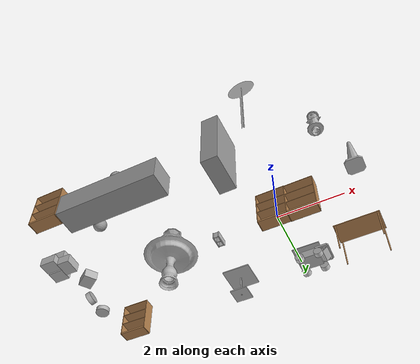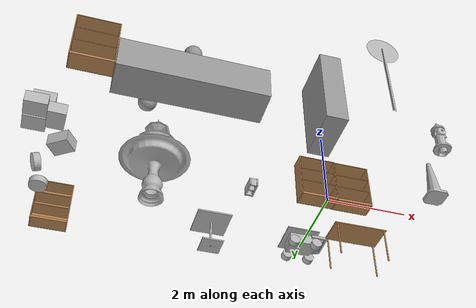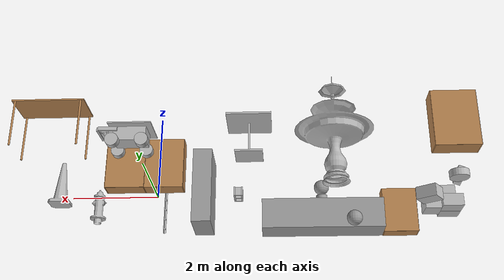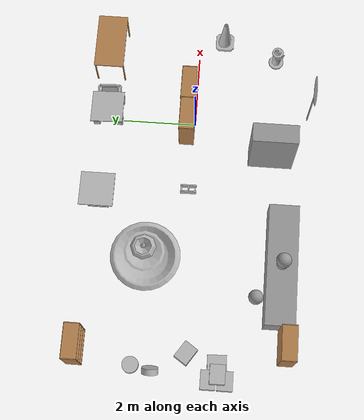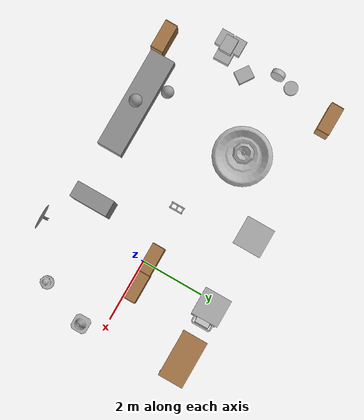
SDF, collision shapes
<?xml version='1.0'?>
<sdf version='1.6'>
  <model name='Furniture'>
    <link name='link_0'>
      <pose frame=''>-3.96381 -2.5225 0.32639 0 -0 0</pose>
      <inertial>
        <mass>1</mass>
        <inertia>
          <ixx>0.166667</ixx>
          <ixy>0</ixy>
          <ixz>0</ixz>
          <iyy>0.166667</iyy>
          <iyz>0</iyz>
          <izz>0.166667</izz>
        </inertia>
        <pose frame=''>0 0 0 0 -0 0</pose>
      </inertial>
      <gravity>1</gravity>
      <self_collide>0</self_collide>
      <kinematic>0</kinematic>
      <visual name='visual'>
        <pose frame=''>0 0 0 0 -0 0</pose>
        <geometry>
          <box>
            <size>3.2 0.8 0.8</size>
          </box>
        </geometry>
        <material>
          <lighting>1</lighting>
          <script>
            <uri>file://media/materials/scripts/gazebo.material</uri>
            <name>Gazebo/Grey</name>
          </script>
          <shader type='pixel'>
            <normal_map>__default__</normal_map>
          </shader>
          <ambient>0.3 0.3 0.3 1</ambient>
          <diffuse>0.7 0.7 0.7 1</diffuse>
          <specular>0.01 0.01 0.01 1</specular>
          <emissive>0 0 0 1</emissive>
        </material>
        <transparency>0</transparency>
        <cast_shadows>1</cast_shadows>
      </visual>
      <collision name='collision'>
        <laser_retro>0</laser_retro>
        <max_contacts>10</max_contacts>
        <pose frame=''>0 0 0 0 -0 0</pose>
        <geometry>
          <box>
            <size>3.2 0.8 0.8</size>
          </box>
        </geometry>
        <surface>
          <friction>
            <ode>
              <mu>1</mu>
              <mu2>1</mu2>
              <fdir1>0 0 0</fdir1>
              <slip1>0</slip1>
              <slip2>0</slip2>
            </ode>
            <torsional>
              <coefficient>1</coefficient>
              <patch_radius>0</patch_radius>
              <surface_radius>0</surface_radius>
              <use_patch_radius>1</use_patch_radius>
              <ode>
                <slip>0</slip>
              </ode>
            </torsional>
          </friction>
          <bounce>
            <restitution_coefficient>0</restitution_coefficient>
            <threshold>1e+06</threshold>
          </bounce>
          <contact>
            <collide_without_contact>0</collide_without_contact>
            <collide_without_contact_bitmask>1</collide_without_contact_bitmask>
            <collide_bitmask>1</collide_bitmask>
            <ode>
              <soft_cfm>0</soft_cfm>
              <soft_erp>0.2</soft_erp>
              <kp>1e+13</kp>
              <kd>1</kd>
              <max_vel>0.01</max_vel>
              <min_depth>0</min_depth>
            </ode>
            <bullet>
              <split_impulse>1</split_impulse>
              <split_impulse_penetration_threshold>-0.01</split_impulse_penetration_threshold>
              <soft_cfm>0</soft_cfm>
              <soft_erp>0.2</soft_erp>
              <kp>1e+13</kp>
              <kd>1</kd>
            </bullet>
          </contact>
        </surface>
      </collision>
    </link>
    <link name='link_1'>
      <pose frame=''>-0.825007 -2.12384 0.92639 0 -0 0</pose>
      <inertial>
        <mass>1</mass>
        <inertia>
          <ixx>0.166667</ixx>
          <ixy>0</ixy>
          <ixz>0</ixz>
          <iyy>0.166667</iyy>
          <iyz>0</iyz>
          <izz>0.166667</izz>
        </inertia>
        <pose frame=''>0 0 0 0 -0 0</pose>
      </inertial>
      <gravity>1</gravity>
      <self_collide>0</self_collide>
      <kinematic>0</kinematic>
      <visual name='visual'>
        <pose frame=''>0 0 0 0 -0 0</pose>
        <geometry>
          <box>
            <size>0.5 1.2 2</size>
          </box>
        </geometry>
        <material>
          <lighting>1</lighting>
          <script>
            <uri>file://media/materials/scripts/gazebo.material</uri>
            <name>Gazebo/Grey</name>
          </script>
          <shader type='pixel'>
            <normal_map>__default__</normal_map>
          </shader>
          <ambient>0.3 0.3 0.3 1</ambient>
          <diffuse>0.7 0.7 0.7 1</diffuse>
          <specular>0.01 0.01 0.01 1</specular>
          <emissive>0 0 0 1</emissive>
        </material>
        <transparency>0</transparency>
        <cast_shadows>1</cast_shadows>
      </visual>
      <collision name='collision'>
        <laser_retro>0</laser_retro>
        <max_contacts>10</max_contacts>
        <pose frame=''>0 0 0 0 -0 0</pose>
        <geometry>
          <box>
            <size>0.5 1.2 2</size>
          </box>
        </geometry>
        <surface>
          <friction>
            <ode>
              <mu>1</mu>
              <mu2>1</mu2>
              <fdir1>0 0 0</fdir1>
              <slip1>0</slip1>
              <slip2>0</slip2>
            </ode>
            <torsional>
              <coefficient>1</coefficient>
              <patch_radius>0</patch_radius>
              <surface_radius>0</surface_radius>
              <use_patch_radius>1</use_patch_radius>
              <ode>
                <slip>0</slip>
              </ode>
            </torsional>
          </friction>
          <bounce>
            <restitution_coefficient>0</restitution_coefficient>
            <threshold>1e+06</threshold>
          </bounce>
          <contact>
            <collide_without_contact>0</collide_without_contact>
            <collide_without_contact_bitmask>1</collide_without_contact_bitmask>
            <collide_bitmask>1</collide_bitmask>
            <ode>
              <soft_cfm>0</soft_cfm>
              <soft_erp>0.2</soft_erp>
              <kp>1e+13</kp>
              <kd>1</kd>
              <max_vel>0.01</max_vel>
              <min_depth>0</min_depth>
            </ode>
            <bullet>
              <split_impulse>1</split_impulse>
              <split_impulse_penetration_threshold>-0.01</split_impulse_penetration_threshold>
              <soft_cfm>0</soft_cfm>
              <soft_erp>0.2</soft_erp>
              <kp>1e+13</kp>
              <kd>1</kd>
            </bullet>
          </contact>
        </surface>
      </collision>
    </link>
    <link name='link_2'>
      <pose frame=''>-4.75501 -1.91521 0.096082 0 -0 0</pose>
      <inertial>
        <mass>1</mass>
        <inertia>
          <ixx>0.1</ixx>
          <ixy>0</ixy>
          <ixz>0</ixz>
          <iyy>0.1</iyy>
          <iyz>0</iyz>
          <izz>0.1</izz>
        </inertia>
        <pose frame=''>0 0 0 0 -0 0</pose>
      </inertial>
      <gravity>1</gravity>
      <self_collide>0</self_collide>
      <kinematic>0</kinematic>
      <visual name='visual'>
        <pose frame=''>0 0 0 0 -0 0</pose>
        <geometry>
          <sphere>
            <radius>0.2</radius>
          </sphere>
        </geometry>
        <material>
          <lighting>1</lighting>
          <script>
            <uri>file://media/materials/scripts/gazebo.material</uri>
            <name>Gazebo/Grey</name>
          </script>
          <shader type='pixel'>
            <normal_map>__default__</normal_map>
          </shader>
          <ambient>0.3 0.3 0.3 1</ambient>
          <diffuse>0.7 0.7 0.7 1</diffuse>
          <specular>0.01 0.01 0.01 1</specular>
          <emissive>0 0 0 1</emissive>
        </material>
        <transparency>0</transparency>
        <cast_shadows>1</cast_shadows>
      </visual>
      <collision name='collision'>
        <laser_retro>0</laser_retro>
        <max_contacts>10</max_contacts>
        <pose frame=''>0 0 0 0 -0 0</pose>
        <geometry>
          <sphere>
            <radius>0.2</radius>
          </sphere>
        </geometry>
        <surface>
          <friction>
            <ode>
              <mu>1</mu>
              <mu2>1</mu2>
              <fdir1>0 0 0</fdir1>
              <slip1>0</slip1>
              <slip2>0</slip2>
            </ode>
            <torsional>
              <coefficient>1</coefficient>
              <patch_radius>0</patch_radius>
              <surface_radius>0</surface_radius>
              <use_patch_radius>1</use_patch_radius>
              <ode>
                <slip>0</slip>
              </ode>
            </torsional>
          </friction>
          <bounce>
            <restitution_coefficient>0</restitution_coefficient>
            <threshold>1e+06</threshold>
          </bounce>
          <contact>
            <collide_without_contact>0</collide_without_contact>
            <collide_without_contact_bitmask>1</collide_without_contact_bitmask>
            <collide_bitmask>1</collide_bitmask>
            <ode>
              <soft_cfm>0</soft_cfm>
              <soft_erp>0.2</soft_erp>
              <kp>1e+13</kp>
              <kd>1</kd>
              <max_vel>0.01</max_vel>
              <min_depth>0</min_depth>
            </ode>
            <bullet>
              <split_impulse>1</split_impulse>
              <split_impulse_penetration_threshold>-0.01</split_impulse_penetration_threshold>
              <soft_cfm>0</soft_cfm>
              <soft_erp>0.2</soft_erp>
              <kp>1e+13</kp>
              <kd>1</kd>
            </bullet>
          </contact>
        </surface>
      </collision>
    </link>
    <link name='link_2_clone'>
      <pose frame=''>-3.96381 -2.5225 1.16639 0 -0 0</pose>
      <inertial>
        <mass>1</mass>
        <inertia>
          <ixx>0.1</ixx>
          <ixy>0</ixy>
          <ixz>0</ixz>
          <iyy>0.1</iyy>
          <iyz>0</iyz>
          <izz>0.1</izz>
        </inertia>
        <pose frame=''>0 0 0 0 -0 0</pose>
      </inertial>
      <self_collide>0</self_collide>
      <kinematic>0</kinematic>
      <gravity>1</gravity>
      <visual name='visual'>
        <pose frame=''>0 0 0 0 -0 0</pose>
        <geometry>
          <sphere>
            <radius>0.2</radius>
          </sphere>
        </geometry>
        <material>
          <lighting>1</lighting>
          <script>
            <uri>file://media/materials/scripts/gazebo.material</uri>
            <name>Gazebo/Grey</name>
          </script>
          <shader type='pixel'>
            <normal_map>__default__</normal_map>
          </shader>
          <ambient>0.3 0.3 0.3 1</ambient>
          <diffuse>0.7 0.7 0.7 1</diffuse>
          <specular>0.01 0.01 0.01 1</specular>
          <emissive>0 0 0 1</emissive>
        </material>
        <transparency>0</transparency>
        <cast_shadows>1</cast_shadows>
      </visual>
      <collision name='collision'>
        <laser_retro>0</laser_retro>
        <max_contacts>10</max_contacts>
        <pose frame=''>0 0 0 0 -0 0</pose>
        <geometry>
          <sphere>
            <radius>0.2</radius>
          </sphere>
        </geometry>
        <surface>
          <friction>
            <ode>
              <mu>1</mu>
              <mu2>1</mu2>
              <fdir1>0 0 0</fdir1>
              <slip1>0</slip1>
              <slip2>0</slip2>
            </ode>
            <torsional>
              <coefficient>1</coefficient>
              <patch_radius>0</patch_radius>
              <surface_radius>0</surface_radius>
              <use_patch_radius>1</use_patch_radius>
              <ode>
                <slip>0</slip>
              </ode>
            </torsional>
          </friction>
          <bounce>
            <restitution_coefficient>0</restitution_coefficient>
            <threshold>1e+06</threshold>
          </bounce>
          <contact>
            <collide_without_contact>0</collide_without_contact>
            <collide_without_contact_bitmask>1</collide_without_contact_bitmask>
            <collide_bitmask>1</collide_bitmask>
            <ode>
              <soft_cfm>0</soft_cfm>
              <soft_erp>0.2</soft_erp>
              <kp>1e+13</kp>
              <kd>1</kd>
              <max_vel>0.01</max_vel>
              <min_depth>0</min_depth>
            </ode>
            <bullet>
              <split_impulse>1</split_impulse>
              <split_impulse_penetration_threshold>-0.01</split_impulse_penetration_threshold>
              <soft_cfm>0</soft_cfm>
              <soft_erp>0.2</soft_erp>
              <kp>1e+13</kp>
              <kd>1</kd>
            </bullet>
          </contact>
        </surface>
      </collision>
    </link>
    <link name='link_3'>
      <pose frame=''>-3.96381 -2.5225 0.82639 0 -0 0</pose>
      <inertial>
        <mass>1</mass>
        <inertia>
          <ixx>0.145833</ixx>
          <ixy>0</ixy>
          <ixz>0</ixz>
          <iyy>0.145833</iyy>
          <iyz>0</iyz>
          <izz>0.125</izz>
        </inertia>
        <pose frame=''>0 0 0 0 -0 0</pose>
      </inertial>
      <gravity>1</gravity>
      <self_collide>0</self_collide>
      <kinematic>0</kinematic>
      <visual name='visual'>
        <pose frame=''>0 0 0 0 -0 0</pose>
        <geometry>
          <cylinder>
            <radius>0.15</radius>
            <length>0.2</length>
          </cylinder>
        </geometry>
        <material>
          <lighting>1</lighting>
          <script>
            <uri>file://media/materials/scripts/gazebo.material</uri>
            <name>Gazebo/Grey</name>
          </script>
          <shader type='pixel'>
            <normal_map>__default__</normal_map>
          </shader>
          <ambient>0.3 0.3 0.3 1</ambient>
          <diffuse>0.7 0.7 0.7 1</diffuse>
          <specular>0.01 0.01 0.01 1</specular>
          <emissive>0 0 0 1</emissive>
        </material>
        <transparency>0</transparency>
        <cast_shadows>1</cast_shadows>
      </visual>
      <collision name='collision'>
        <laser_retro>0</laser_retro>
        <max_contacts>10</max_contacts>
        <pose frame=''>0 0 0 0 -0 0</pose>
        <geometry>
          <cylinder>
            <radius>0.15</radius>
            <length>0.2</length>
          </cylinder>
        </geometry>
        <surface>
          <friction>
            <ode>
              <mu>1</mu>
              <mu2>1</mu2>
              <fdir1>0 0 0</fdir1>
              <slip1>0</slip1>
              <slip2>0</slip2>
            </ode>
            <torsional>
              <coefficient>1</coefficient>
              <patch_radius>0</patch_radius>
              <surface_radius>0</surface_radius>
              <use_patch_radius>1</use_patch_radius>
              <ode>
                <slip>0</slip>
              </ode>
            </torsional>
          </friction>
          <bounce>
            <restitution_coefficient>0</restitution_coefficient>
            <threshold>1e+06</threshold>
          </bounce>
          <contact>
            <collide_without_contact>0</collide_without_contact>
            <collide_without_contact_bitmask>1</collide_without_contact_bitmask>
            <collide_bitmask>1</collide_bitmask>
            <ode>
              <soft_cfm>0</soft_cfm>
              <soft_erp>0.2</soft_erp>
              <kp>1e+13</kp>
              <kd>1</kd>
              <max_vel>0.01</max_vel>
              <min_depth>0</min_depth>
            </ode>
            <bullet>
              <split_impulse>1</split_impulse>
              <split_impulse_penetration_threshold>-0.01</split_impulse_penetration_threshold>
              <soft_cfm>0</soft_cfm>
              <soft_erp>0.2</soft_erp>
              <kp>1e+13</kp>
              <kd>1</kd>
            </bullet>
          </contact>
        </surface>
      </collision>
    </link>
    <model name='Construction Cone'>
      <link name='link'>
        <collision name='collision'>
          <geometry>
            <mesh>
              <scale>10 10 10</scale>
              <uri>model://construction_cone/meshes/construction_cone.dae</uri>
            </mesh>
          </geometry>
        </collision>
        <visual name='visual'>
          <geometry>
            <mesh>
              <scale>10 10 10</scale>
              <uri>model://construction_cone/meshes/construction_cone.dae</uri>
            </mesh>
          </geometry>
        </visual>
      </link>
      <pose frame=''>2.53628 -0.683507 0.107408 0 -0 0</pose>
    </model>
    <model name='Speed limit'>
      <static>1</static>
      <link name='link'>
        <collision name='collision'>
          <geometry>
            <mesh>
              <scale>10 10 10</scale>
              <uri>model://speed_limit_sign/meshes/speed_limit_sign.dae</uri>
            </mesh>
          </geometry>
        </collision>
        <visual name='visual'>
          <geometry>
            <mesh>
              <scale>10 10 10</scale>
              <uri>model://speed_limit_sign/meshes/speed_limit_sign.dae</uri>
            </mesh>
          </geometry>
        </visual>
      </link>
      <pose frame=''>0.337301 -3.06008 0.107408 0 -0 0</pose>
    </model>
    <model name='bookshelf'>
      <static>1</static>
      <link name='link'>
        <inertial>
          <mass>1</mass>
        </inertial>
        <collision name='back'>
          <pose frame=''>0 0.005 0.6 0 -0 0</pose>
          <geometry>
            <box>
              <size>0.9 0.01 1.2</size>
            </box>
          </geometry>
        </collision>
        <visual name='visual1'>
          <pose frame=''>0 0.005 0.6 0 -0 0</pose>
          <geometry>
            <box>
              <size>0.9 0.01 1.2</size>
            </box>
          </geometry>
          <material>
            <script>
              <uri>file://media/materials/scripts/gazebo.material</uri>
              <name>Gazebo/Wood</name>
            </script>
          </material>
        </visual>
        <collision name='left_side'>
          <pose frame=''>0.45 -0.195 0.6 0 -0 0</pose>
          <geometry>
            <box>
              <size>0.02 0.4 1.2</size>
            </box>
          </geometry>
        </collision>
        <visual name='visual2'>
          <pose frame=''>0.45 -0.195 0.6 0 -0 0</pose>
          <geometry>
            <box>
              <size>0.02 0.4 1.2</size>
            </box>
          </geometry>
          <material>
            <script>
              <uri>file://media/materials/scripts/gazebo.material</uri>
              <name>Gazebo/Wood</name>
            </script>
          </material>
        </visual>
        <collision name='right_side'>
          <pose frame=''>-0.45 -0.195 0.6 0 -0 0</pose>
          <geometry>
            <box>
              <size>0.02 0.4 1.2</size>
            </box>
          </geometry>
        </collision>
        <visual name='visual3'>
          <pose frame=''>-0.45 -0.195 0.6 0 -0 0</pose>
          <geometry>
            <box>
              <size>0.02 0.4 1.2</size>
            </box>
          </geometry>
          <material>
            <script>
              <uri>file://media/materials/scripts/gazebo.material</uri>
              <name>Gazebo/Wood</name>
            </script>
          </material>
        </visual>
        <collision name='bottom'>
          <pose frame=''>0 -0.195 0.03 0 -0 0</pose>
          <geometry>
            <box>
              <size>0.88 0.4 0.06</size>
            </box>
          </geometry>
        </collision>
        <visual name='visual4'>
          <pose frame=''>0 -0.195 0.03 0 -0 0</pose>
          <geometry>
            <box>
              <size>0.88 0.4 0.06</size>
            </box>
          </geometry>
          <material>
            <script>
              <uri>file://media/materials/scripts/gazebo.material</uri>
              <name>Gazebo/Wood</name>
            </script>
          </material>
        </visual>
        <collision name='top'>
          <pose frame=''>0 -0.195 1.19 0 -0 0</pose>
          <geometry>
            <box>
              <size>0.88 0.4 0.02</size>
            </box>
          </geometry>
        </collision>
        <visual name='visual5'>
          <pose frame=''>0 -0.195 1.19 0 -0 0</pose>
          <geometry>
            <box>
              <size>0.88 0.4 0.02</size>
            </box>
          </geometry>
          <material>
            <script>
              <uri>file://media/materials/scripts/gazebo.material</uri>
              <name>Gazebo/Wood</name>
            </script>
          </material>
        </visual>
        <collision name='low_shelf'>
          <pose frame=''>0 -0.195 0.43 0 -0 0</pose>
          <geometry>
            <box>
              <size>0.88 0.4 0.02</size>
            </box>
          </geometry>
        </collision>
        <visual name='visual6'>
          <pose frame=''>0 -0.195 0.43 0 -0 0</pose>
          <geometry>
            <box>
              <size>0.88 0.4 0.02</size>
            </box>
          </geometry>
          <material>
            <script>
              <uri>file://media/materials/scripts/gazebo.material</uri>
              <name>Gazebo/Wood</name>
            </script>
          </material>
        </visual>
        <collision name='high_shelf'>
          <pose frame=''>0 -0.195 0.8 0 -0 0</pose>
          <geometry>
            <box>
              <size>0.88 0.4 0.02</size>
            </box>
          </geometry>
        </collision>
        <visual name='visual7'>
          <pose frame=''>0 -0.195 0.8 0 -0 0</pose>
          <geometry>
            <box>
              <size>0.88 0.4 0.02</size>
            </box>
          </geometry>
          <material>
            <script>
              <uri>file://media/materials/scripts/gazebo.material</uri>
              <name>Gazebo/Wood</name>
            </script>
          </material>
        </visual>
      </link>
      <pose frame=''>-6.03121 -2.55626 -0.07361 0 -0 0</pose>
    </model>
    <model name='bookshelf_0'>
      <static>1</static>
      <link name='link'>
        <inertial>
          <mass>1</mass>
        </inertial>
        <collision name='back'>
          <pose frame=''>0 0.005 0.6 0 -0 0</pose>
          <geometry>
            <box>
              <size>0.9 0.01 1.2</size>
            </box>
          </geometry>
        </collision>
        <visual name='visual1'>
          <pose frame=''>0 0.005 0.6 0 -0 0</pose>
          <geometry>
            <box>
              <size>0.9 0.01 1.2</size>
            </box>
          </geometry>
          <material>
            <script>
              <uri>file://media/materials/scripts/gazebo.material</uri>
              <name>Gazebo/Wood</name>
            </script>
          </material>
        </visual>
        <collision name='left_side'>
          <pose frame=''>0.45 -0.195 0.6 0 -0 0</pose>
          <geometry>
            <box>
              <size>0.02 0.4 1.2</size>
            </box>
          </geometry>
        </collision>
        <visual name='visual2'>
          <pose frame=''>0.45 -0.195 0.6 0 -0 0</pose>
          <geometry>
            <box>
              <size>0.02 0.4 1.2</size>
            </box>
          </geometry>
          <material>
            <script>
              <uri>file://media/materials/scripts/gazebo.material</uri>
              <name>Gazebo/Wood</name>
            </script>
          </material>
        </visual>
        <collision name='right_side'>
          <pose frame=''>-0.45 -0.195 0.6 0 -0 0</pose>
          <geometry>
            <box>
              <size>0.02 0.4 1.2</size>
            </box>
          </geometry>
        </collision>
        <visual name='visual3'>
          <pose frame=''>-0.45 -0.195 0.6 0 -0 0</pose>
          <geometry>
            <box>
              <size>0.02 0.4 1.2</size>
            </box>
          </geometry>
          <material>
            <script>
              <uri>file://media/materials/scripts/gazebo.material</uri>
              <name>Gazebo/Wood</name>
            </script>
          </material>
        </visual>
        <collision name='bottom'>
          <pose frame=''>0 -0.195 0.03 0 -0 0</pose>
          <geometry>
            <box>
              <size>0.88 0.4 0.06</size>
            </box>
          </geometry>
        </collision>
        <visual name='visual4'>
          <pose frame=''>0 -0.195 0.03 0 -0 0</pose>
          <geometry>
            <box>
              <size>0.88 0.4 0.06</size>
            </box>
          </geometry>
          <material>
            <script>
              <uri>file://media/materials/scripts/gazebo.material</uri>
              <name>Gazebo/Wood</name>
            </script>
          </material>
        </visual>
        <collision name='top'>
          <pose frame=''>0 -0.195 1.19 0 -0 0</pose>
          <geometry>
            <box>
              <size>0.88 0.4 0.02</size>
            </box>
          </geometry>
        </collision>
        <visual name='visual5'>
          <pose frame=''>0 -0.195 1.19 0 -0 0</pose>
          <geometry>
            <box>
              <size>0.88 0.4 0.02</size>
            </box>
          </geometry>
          <material>
            <script>
              <uri>file://media/materials/scripts/gazebo.material</uri>
              <name>Gazebo/Wood</name>
            </script>
          </material>
        </visual>
        <collision name='low_shelf'>
          <pose frame=''>0 -0.195 0.43 0 -0 0</pose>
          <geometry>
            <box>
              <size>0.88 0.4 0.02</size>
            </box>
          </geometry>
        </collision>
        <visual name='visual6'>
          <pose frame=''>0 -0.195 0.43 0 -0 0</pose>
          <geometry>
            <box>
              <size>0.88 0.4 0.02</size>
            </box>
          </geometry>
          <material>
            <script>
              <uri>file://media/materials/scripts/gazebo.material</uri>
              <name>Gazebo/Wood</name>
            </script>
          </material>
        </visual>
        <collision name='high_shelf'>
          <pose frame=''>0 -0.195 0.8 0 -0 0</pose>
          <geometry>
            <box>
              <size>0.88 0.4 0.02</size>
            </box>
          </geometry>
        </collision>
        <visual name='visual7'>
          <pose frame=''>0 -0.195 0.8 0 -0 0</pose>
          <geometry>
            <box>
              <size>0.88 0.4 0.02</size>
            </box>
          </geometry>
          <material>
            <script>
              <uri>file://media/materials/scripts/gazebo.material</uri>
              <name>Gazebo/Wood</name>
            </script>
          </material>
        </visual>
      </link>
      <pose frame=''>-6.34699 2.89106 -0.07361 0 -0 0</pose>
    </model>
    <model name='bookshelf_1'>
      <static>1</static>
      <link name='link'>
        <inertial>
          <mass>1</mass>
        </inertial>
        <collision name='back'>
          <pose frame=''>0 0.005 0.6 0 -0 0</pose>
          <geometry>
            <box>
              <size>0.9 0.01 1.2</size>
            </box>
          </geometry>
        </collision>
        <visual name='visual1'>
          <pose frame=''>0 0.005 0.6 0 -0 0</pose>
          <geometry>
            <box>
              <size>0.9 0.01 1.2</size>
            </box>
          </geometry>
          <material>
            <script>
              <uri>file://media/materials/scripts/gazebo.material</uri>
              <name>Gazebo/Wood</name>
            </script>
          </material>
        </visual>
        <collision name='left_side'>
          <pose frame=''>0.45 -0.195 0.6 0 -0 0</pose>
          <geometry>
            <box>
              <size>0.02 0.4 1.2</size>
            </box>
          </geometry>
        </collision>
        <visual name='visual2'>
          <pose frame=''>0.45 -0.195 0.6 0 -0 0</pose>
          <geometry>
            <box>
              <size>0.02 0.4 1.2</size>
            </box>
          </geometry>
          <material>
            <script>
              <uri>file://media/materials/scripts/gazebo.material</uri>
              <name>Gazebo/Wood</name>
            </script>
          </material>
        </visual>
        <collision name='right_side'>
          <pose frame=''>-0.45 -0.195 0.6 0 -0 0</pose>
          <geometry>
            <box>
              <size>0.02 0.4 1.2</size>
            </box>
          </geometry>
        </collision>
        <visual name='visual3'>
          <pose frame=''>-0.45 -0.195 0.6 0 -0 0</pose>
          <geometry>
            <box>
              <size>0.02 0.4 1.2</size>
            </box>
          </geometry>
          <material>
            <script>
              <uri>file://media/materials/scripts/gazebo.material</uri>
              <name>Gazebo/Wood</name>
            </script>
          </material>
        </visual>
        <collision name='bottom'>
          <pose frame=''>0 -0.195 0.03 0 -0 0</pose>
          <geometry>
            <box>
              <size>0.88 0.4 0.06</size>
            </box>
          </geometry>
        </collision>
        <visual name='visual4'>
          <pose frame=''>0 -0.195 0.03 0 -0 0</pose>
          <geometry>
            <box>
              <size>0.88 0.4 0.06</size>
            </box>
          </geometry>
          <material>
            <script>
              <uri>file://media/materials/scripts/gazebo.material</uri>
              <name>Gazebo/Wood</name>
            </script>
          </material>
        </visual>
        <collision name='top'>
          <pose frame=''>0 -0.195 1.19 0 -0 0</pose>
          <geometry>
            <box>
              <size>0.88 0.4 0.02</size>
            </box>
          </geometry>
        </collision>
        <visual name='visual5'>
          <pose frame=''>0 -0.195 1.19 0 -0 0</pose>
          <geometry>
            <box>
              <size>0.88 0.4 0.02</size>
            </box>
          </geometry>
          <material>
            <script>
              <uri>file://media/materials/scripts/gazebo.material</uri>
              <name>Gazebo/Wood</name>
            </script>
          </material>
        </visual>
        <collision name='low_shelf'>
          <pose frame=''>0 -0.195 0.43 0 -0 0</pose>
          <geometry>
            <box>
              <size>0.88 0.4 0.02</size>
            </box>
          </geometry>
        </collision>
        <visual name='visual6'>
          <pose frame=''>0 -0.195 0.43 0 -0 0</pose>
          <geometry>
            <box>
              <size>0.88 0.4 0.02</size>
            </box>
          </geometry>
          <material>
            <script>
              <uri>file://media/materials/scripts/gazebo.material</uri>
              <name>Gazebo/Wood</name>
            </script>
          </material>
        </visual>
        <collision name='high_shelf'>
          <pose frame=''>0 -0.195 0.8 0 -0 0</pose>
          <geometry>
            <box>
              <size>0.88 0.4 0.02</size>
            </box>
          </geometry>
        </collision>
        <visual name='visual7'>
          <pose frame=''>0 -0.195 0.8 0 -0 0</pose>
          <geometry>
            <box>
              <size>0.88 0.4 0.02</size>
            </box>
          </geometry>
          <material>
            <script>
              <uri>file://media/materials/scripts/gazebo.material</uri>
              <name>Gazebo/Wood</name>
            </script>
          </material>
        </visual>
      </link>
      <pose frame=''>-0.162446 0.403445 0.107408 0 -0 0</pose>
    </model>
    <model name='bookshelf_2'>
      <static>1</static>
      <link name='link'>
        <inertial>
          <mass>1</mass>
        </inertial>
        <collision name='back'>
          <pose frame=''>0 0.005 0.6 0 -0 0</pose>
          <geometry>
            <box>
              <size>0.9 0.01 1.2</size>
            </box>
          </geometry>
        </collision>
        <visual name='visual1'>
          <pose frame=''>0 0.005 0.6 0 -0 0</pose>
          <geometry>
            <box>
              <size>0.9 0.01 1.2</size>
            </box>
          </geometry>
          <material>
            <script>
              <uri>file://media/materials/scripts/gazebo.material</uri>
              <name>Gazebo/Wood</name>
            </script>
          </material>
        </visual>
        <collision name='left_side'>
          <pose frame=''>0.45 -0.195 0.6 0 -0 0</pose>
          <geometry>
            <box>
              <size>0.02 0.4 1.2</size>
            </box>
          </geometry>
        </collision>
        <visual name='visual2'>
          <pose frame=''>0.45 -0.195 0.6 0 -0 0</pose>
          <geometry>
            <box>
              <size>0.02 0.4 1.2</size>
            </box>
          </geometry>
          <material>
            <script>
              <uri>file://media/materials/scripts/gazebo.material</uri>
              <name>Gazebo/Wood</name>
            </script>
          </material>
        </visual>
        <collision name='right_side'>
          <pose frame=''>-0.45 -0.195 0.6 0 -0 0</pose>
          <geometry>
            <box>
              <size>0.02 0.4 1.2</size>
            </box>
          </geometry>
        </collision>
        <visual name='visual3'>
          <pose frame=''>-0.45 -0.195 0.6 0 -0 0</pose>
          <geometry>
            <box>
              <size>0.02 0.4 1.2</size>
            </box>
          </geometry>
          <material>
            <script>
              <uri>file://media/materials/scripts/gazebo.material</uri>
              <name>Gazebo/Wood</name>
            </script>
          </material>
        </visual>
        <collision name='bottom'>
          <pose frame=''>0 -0.195 0.03 0 -0 0</pose>
          <geometry>
            <box>
              <size>0.88 0.4 0.06</size>
            </box>
          </geometry>
        </collision>
        <visual name='visual4'>
          <pose frame=''>0 -0.195 0.03 0 -0 0</pose>
          <geometry>
            <box>
              <size>0.88 0.4 0.06</size>
            </box>
          </geometry>
          <material>
            <script>
              <uri>file://media/materials/scripts/gazebo.material</uri>
              <name>Gazebo/Wood</name>
            </script>
          </material>
        </visual>
        <collision name='top'>
          <pose frame=''>0 -0.195 1.19 0 -0 0</pose>
          <geometry>
            <box>
              <size>0.88 0.4 0.02</size>
            </box>
          </geometry>
        </collision>
        <visual name='visual5'>
          <pose frame=''>0 -0.195 1.19 0 -0 0</pose>
          <geometry>
            <box>
              <size>0.88 0.4 0.02</size>
            </box>
          </geometry>
          <material>
            <script>
              <uri>file://media/materials/scripts/gazebo.material</uri>
              <name>Gazebo/Wood</name>
            </script>
          </material>
        </visual>
        <collision name='low_shelf'>
          <pose frame=''>0 -0.195 0.43 0 -0 0</pose>
          <geometry>
            <box>
              <size>0.88 0.4 0.02</size>
            </box>
          </geometry>
        </collision>
        <visual name='visual6'>
          <pose frame=''>0 -0.195 0.43 0 -0 0</pose>
          <geometry>
            <box>
              <size>0.88 0.4 0.02</size>
            </box>
          </geometry>
          <material>
            <script>
              <uri>file://media/materials/scripts/gazebo.material</uri>
              <name>Gazebo/Wood</name>
            </script>
          </material>
        </visual>
        <collision name='high_shelf'>
          <pose frame=''>0 -0.195 0.8 0 -0 0</pose>
          <geometry>
            <box>
              <size>0.88 0.4 0.02</size>
            </box>
          </geometry>
        </collision>
        <visual name='visual7'>
          <pose frame=''>0 -0.195 0.8 0 -0 0</pose>
          <geometry>
            <box>
              <size>0.88 0.4 0.02</size>
            </box>
          </geometry>
          <material>
            <script>
              <uri>file://media/materials/scripts/gazebo.material</uri>
              <name>Gazebo/Wood</name>
            </script>
          </material>
        </visual>
      </link>
      <pose frame=''>0.736986 0.415849 0.107408 0 -0 0</pose>
    </model>
    <model name='cafe_table'>
      <static>1</static>
      <link name='link'>
        <collision name='surface'>
          <pose frame=''>0 0 0.755 0 -0 0</pose>
          <geometry>
            <box>
              <size>0.913 0.913 0.04</size>
            </box>
          </geometry>
        </collision>
        <collision name='column'>
          <pose frame=''>0 0 0.37 0 -0 0</pose>
          <geometry>
            <box>
              <size>0.042 0.042 0.74</size>
            </box>
          </geometry>
        </collision>
        <collision name='base'>
          <pose frame=''>0 0 0.02 0 -0 0</pose>
          <geometry>
            <box>
              <size>0.56 0.56 0.04</size>
            </box>
          </geometry>
        </collision>
        <visual name='visual'>
          <geometry>
            <mesh>
              <uri>model://cafe_table/meshes/cafe_table.dae</uri>
            </mesh>
          </geometry>
        </visual>
      </link>
      <pose frame=''>-2.24496 2.47868 -0.07361 0 -0 0</pose>
    </model>
    <model name='car_wheel'>
      <link name='link'>
        <pose frame=''>0 0 0.21682 0 1.5707 0</pose>
        <inertial>
          <mass>12</mass>
          <inertia>
            <ixx>0.167005</ixx>
            <ixy>0</ixy>
            <ixz>0</ixz>
            <iyy>0.167005</iyy>
            <iyz>0</iyz>
            <izz>0.282065</izz>
          </inertia>
        </inertial>
        <collision name='collision'>
          <geometry>
            <cylinder>
              <radius>0.21682</radius>
              <length>0.16116</length>
            </cylinder>
          </geometry>
          <surface>
            <friction>
              <ode>
                <mu>1</mu>
                <mu2>1</mu2>
                <fdir1>0 0 1</fdir1>
                <slip1>0</slip1>
                <slip2>0</slip2>
              </ode>
            </friction>
            <contact>
              <ode>
                <min_depth>0.005</min_depth>
                <kp>1e+08</kp>
              </ode>
            </contact>
          </surface>
        </collision>
        <visual name='visual'>
          <pose frame=''>0 0 -0.08058 0 -0 0</pose>
          <geometry>
            <mesh>
              <uri>model://car_wheel/meshes/car_wheel.dae</uri>
            </mesh>
          </geometry>
        </visual>
      </link>
      <pose frame=''>-6.76975 0.710045 -0.038601 0 -0.37036 0</pose>
    </model>
    <model name='car_wheel_0'>
      <link name='link'>
        <pose frame=''>0 0 0.21682 0 1.5707 0</pose>
        <inertial>
          <mass>12</mass>
          <inertia>
            <ixx>0.167005</ixx>
            <ixy>0</ixy>
            <ixz>0</ixz>
            <iyy>0.167005</iyy>
            <iyz>0</iyz>
            <izz>0.282065</izz>
          </inertia>
        </inertial>
        <collision name='collision'>
          <geometry>
            <cylinder>
              <radius>0.21682</radius>
              <length>0.16116</length>
            </cylinder>
          </geometry>
          <surface>
            <friction>
              <ode>
                <mu>1</mu>
                <mu2>1</mu2>
                <fdir1>0 0 1</fdir1>
                <slip1>0</slip1>
                <slip2>0</slip2>
              </ode>
            </friction>
            <contact>
              <ode>
                <min_depth>0.005</min_depth>
                <kp>1e+08</kp>
              </ode>
            </contact>
          </surface>
        </collision>
        <visual name='visual'>
          <pose frame=''>0 0 -0.08058 0 -0 0</pose>
          <geometry>
            <mesh>
              <uri>model://car_wheel/meshes/car_wheel.dae</uri>
            </mesh>
          </geometry>
        </visual>
      </link>
      <pose frame=''>-6.49998 1.24 -0.028648 0 -1.56661 0</pose>
    </model>
    <model name='cardboard_box'>
      <pose frame=''>-6.98726 -1.22776 0.07639 0 -0 0</pose>
      <link name='link'>
        <inertial>
          <mass>2</mass>
          <inertia>
            <ixx>0.0416667</ixx>
            <ixy>0</ixy>
            <ixz>0</ixz>
            <iyy>0.0566667</iyy>
            <iyz>0</iyz>
            <izz>0.0683333</izz>
          </inertia>
        </inertial>
        <collision name='collision'>
          <geometry>
            <box>
              <size>0.5 0.4 0.3</size>
            </box>
          </geometry>
          <surface>
            <friction>
              <ode>
                <mu>1</mu>
                <mu2>1</mu2>
              </ode>
            </friction>
            <contact>
              <ode>
                <kp>1e+07</kp>
                <kd>1</kd>
                <min_depth>0.001</min_depth>
                <max_vel>0.1</max_vel>
              </ode>
            </contact>
          </surface>
        </collision>
        <visual name='visual'>
          <pose frame=''>0 0 -0.15 0 -0 0</pose>
          <geometry>
            <mesh>
              <uri>model://cardboard_box/meshes/cardboard_box.dae</uri>
              <scale>1.25932 1.00745 0.755591</scale>
            </mesh>
          </geometry>
        </visual>
      </link>
    </model>
    <model name='cardboard_box_0'>
      <pose frame=''>-6.98405 -0.786589 0.07639 0 -0 0</pose>
      <link name='link'>
        <inertial>
          <mass>2</mass>
          <inertia>
            <ixx>0.0416667</ixx>
            <ixy>0</ixy>
            <ixz>0</ixz>
            <iyy>0.0566667</iyy>
            <iyz>0</iyz>
            <izz>0.0683333</izz>
          </inertia>
        </inertial>
        <collision name='collision'>
          <geometry>
            <box>
              <size>0.5 0.4 0.3</size>
            </box>
          </geometry>
          <surface>
            <friction>
              <ode>
                <mu>1</mu>
                <mu2>1</mu2>
              </ode>
            </friction>
            <contact>
              <ode>
                <kp>1e+07</kp>
                <kd>1</kd>
                <min_depth>0.001</min_depth>
                <max_vel>0.1</max_vel>
              </ode>
            </contact>
          </surface>
        </collision>
        <visual name='visual'>
          <pose frame=''>0 0 -0.15 0 -0 0</pose>
          <geometry>
            <mesh>
              <uri>model://cardboard_box/meshes/cardboard_box.dae</uri>
              <scale>1.25932 1.00745 0.755591</scale>
            </mesh>
          </geometry>
        </visual>
      </link>
    </model>
    <model name='cardboard_box_1'>
      <pose frame=''>-6.54078 -0.992432 0.07639 0 0 -1.54602</pose>
      <link name='link'>
        <inertial>
          <mass>2</mass>
          <inertia>
            <ixx>0.0416667</ixx>
            <ixy>0</ixy>
            <ixz>0</ixz>
            <iyy>0.0566667</iyy>
            <iyz>0</iyz>
            <izz>0.0683333</izz>
          </inertia>
        </inertial>
        <collision name='collision'>
          <geometry>
            <box>
              <size>0.5 0.4 0.3</size>
            </box>
          </geometry>
          <surface>
            <friction>
              <ode>
                <mu>1</mu>
                <mu2>1</mu2>
              </ode>
            </friction>
            <contact>
              <ode>
                <kp>1e+07</kp>
                <kd>1</kd>
                <min_depth>0.001</min_depth>
                <max_vel>0.1</max_vel>
              </ode>
            </contact>
          </surface>
        </collision>
        <visual name='visual'>
          <pose frame=''>0 0 -0.15 0 -0 0</pose>
          <geometry>
            <mesh>
              <uri>model://cardboard_box/meshes/cardboard_box.dae</uri>
              <scale>1.25932 1.00745 0.755591</scale>
            </mesh>
          </geometry>
        </visual>
      </link>
    </model>
    <model name='cardboard_box_2'>
      <pose frame=''>-6.85799 -1.01639 0.380677 0 -0 0</pose>
      <link name='link'>
        <inertial>
          <mass>2</mass>
          <inertia>
            <ixx>0.0416667</ixx>
            <ixy>0</ixy>
            <ixz>0</ixz>
            <iyy>0.0566667</iyy>
            <iyz>0</iyz>
            <izz>0.0683333</izz>
          </inertia>
        </inertial>
        <collision name='collision'>
          <geometry>
            <box>
              <size>0.5 0.4 0.3</size>
            </box>
          </geometry>
          <surface>
            <friction>
              <ode>
                <mu>1</mu>
                <mu2>1</mu2>
              </ode>
            </friction>
            <contact>
              <ode>
                <kp>1e+07</kp>
                <kd>1</kd>
                <min_depth>0.001</min_depth>
                <max_vel>0.1</max_vel>
              </ode>
            </contact>
          </surface>
        </collision>
        <visual name='visual'>
          <pose frame=''>0 0 -0.15 0 -0 0</pose>
          <geometry>
            <mesh>
              <uri>model://cardboard_box/meshes/cardboard_box.dae</uri>
              <scale>1.25932 1.00745 0.755591</scale>
            </mesh>
          </geometry>
        </visual>
      </link>
    </model>
    <model name='cardboard_box_3'>
      <pose frame=''>-6.34171 -0.18029 0.07639 0 0 -0.595637</pose>
      <link name='link'>
        <inertial>
          <mass>2</mass>
          <inertia>
            <ixx>0.0416667</ixx>
            <ixy>0</ixy>
            <ixz>0</ixz>
            <iyy>0.0566667</iyy>
            <iyz>0</iyz>
            <izz>0.0683333</izz>
          </inertia>
        </inertial>
        <collision name='collision'>
          <geometry>
            <box>
              <size>0.5 0.4 0.3</size>
            </box>
          </geometry>
          <surface>
            <friction>
              <ode>
                <mu>1</mu>
                <mu2>1</mu2>
              </ode>
            </friction>
            <contact>
              <ode>
                <kp>1e+07</kp>
                <kd>1</kd>
                <min_depth>0.001</min_depth>
                <max_vel>0.1</max_vel>
              </ode>
            </contact>
          </surface>
        </collision>
        <visual name='visual'>
          <pose frame=''>0 0 -0.15 0 -0 0</pose>
          <geometry>
            <mesh>
              <uri>model://cardboard_box/meshes/cardboard_box.dae</uri>
              <scale>1.25932 1.00745 0.755591</scale>
            </mesh>
          </geometry>
        </visual>
      </link>
    </model>
    <model name='cinder_block'>
      <link name='link'>
        <inertial>
          <pose frame=''>0 0 0.1016 0 -0 0</pose>
          <mass>5</mass>
          <inertia>
            <ixx>0.028705</ixx>
            <ixy>0</ixy>
            <iyy>0.073708</iyy>
            <ixz>0</ixz>
            <iyz>0</iyz>
            <izz>0.06908</izz>
          </inertia>
        </inertial>
        <visual name='visual'>
          <geometry>
            <mesh>
              <uri>model://cinder_block/meshes/cinder_block.dae</uri>
            </mesh>
          </geometry>
        </visual>
        <collision name='left'>
          <pose frame=''>0 -0.08465 0.1016 0 -0 0</pose>
          <geometry>
            <box>
              <size>0.43495 0.0339 0.2032</size>
            </box>
          </geometry>
          <surface>
            <contact>
              <ode>
                <max_vel>0.1</max_vel>
                <min_depth>0.001</min_depth>
              </ode>
            </contact>
            <friction>
              <ode>
                <mu>1</mu>
                <mu2>1</mu2>
              </ode>
            </friction>
          </surface>
        </collision>
        <collision name='right'>
          <pose frame=''>0 0.08465 0.1016 0 -0 0</pose>
          <geometry>
            <box>
              <size>0.43495 0.0339 0.2032</size>
            </box>
          </geometry>
          <surface>
            <contact>
              <ode>
                <max_vel>0.1</max_vel>
                <min_depth>0.001</min_depth>
              </ode>
            </contact>
            <friction>
              <ode>
                <mu>1</mu>
                <mu2>1</mu2>
              </ode>
            </friction>
          </surface>
        </collision>
        <collision name='front'>
          <pose frame=''>0.18625 0 0.1016 0 -0 0</pose>
          <geometry>
            <box>
              <size>0.0339 0.1354 0.203</size>
            </box>
          </geometry>
          <surface>
            <contact>
              <ode>
                <max_vel>0.1</max_vel>
                <min_depth>0.001</min_depth>
              </ode>
            </contact>
            <friction>
              <ode>
                <mu>1</mu>
                <mu2>1</mu2>
              </ode>
            </friction>
          </surface>
        </collision>
        <collision name='middle'>
          <pose frame=''>0 0 0.1016 0 -0 0</pose>
          <geometry>
            <box>
              <size>0.0339 0.1354 0.203</size>
            </box>
          </geometry>
          <surface>
            <contact>
              <ode>
                <max_vel>0.1</max_vel>
                <min_depth>0.001</min_depth>
              </ode>
            </contact>
            <friction>
              <ode>
                <mu>1</mu>
                <mu2>1</mu2>
              </ode>
            </friction>
          </surface>
        </collision>
        <collision name='back'>
          <pose frame=''>-0.18625 0 0.1016 0 -0 0</pose>
          <geometry>
            <box>
              <size>0.0339 0.1354 0.203</size>
            </box>
          </geometry>
          <surface>
            <contact>
              <ode>
                <max_vel>0.1</max_vel>
                <min_depth>0.001</min_depth>
              </ode>
            </contact>
            <friction>
              <ode>
                <mu>1</mu>
                <mu2>1</mu2>
              </ode>
            </friction>
          </surface>
        </collision>
      </link>
      <pose frame=''>-1.88497 0.065462 -0.07361 0 0 -1.5592</pose>
    </model>
    <model name='fire_hydrant'>
      <static>1</static>
      <link name='link'>
        <collision name='collision'>
          <geometry>
            <mesh>
              <uri>model://fire_hydrant/meshes/fire_hydrant.dae</uri>
            </mesh>
          </geometry>
        </collision>
        <visual name='visual'>
          <geometry>
            <mesh>
              <uri>model://fire_hydrant/meshes/fire_hydrant.dae</uri>
            </mesh>
          </geometry>
        </visual>
      </link>
      <pose frame=''>1.96512 -2.15946 0.107408 0 -0 0</pose>
    </model>
    <model name='fountain'>
      <static>1</static>
      <link name='link'>
        <collision name='collision'>
          <geometry>
            <mesh>
              <uri>model://fountain/meshes/fountain.dae</uri>
            </mesh>
          </geometry>
        </collision>
        <visual name='visual'>
          <geometry>
            <mesh>
              <uri>model://fountain/meshes/fountain.dae</uri>
            </mesh>
          </geometry>
        </visual>
      </link>
      <pose frame=''>-4.09392 1.00318 -0.07361 0 -0 0</pose>
    </model>
    <model name='mars_rover'>
      <static>1</static>
      <link name='link'>
        <collision name='solar_panel_collision'>
          <pose frame=''>0 -0.06945 0.47293 0 -0 0</pose>
          <geometry>
            <box>
              <size>0.87974 0.8821 0.02602</size>
            </box>
          </geometry>
        </collision>
        <collision name='chassis_collision'>
          <pose frame=''>0 -0.05 0.31475 0 -0 0</pose>
          <geometry>
            <box>
              <size>0.49522 0.67401 0.28915</size>
            </box>
          </geometry>
        </collision>
        <collision name='rear_left_bumper_collision'>
          <pose frame=''>0.30107 0.3835 0.38976 0 -0 0</pose>
          <geometry>
            <box>
              <size>0.04442 0.38897 0.07918</size>
            </box>
          </geometry>
        </collision>
        <collision name='rear_right_bumper_collision'>
          <pose frame=''>-0.30107 0.3835 0.38976 0 -0 0</pose>
          <geometry>
            <box>
              <size>0.04442 0.38897 0.07918</size>
            </box>
          </geometry>
        </collision>
        <collision name='rear_bumper_collision'>
          <pose frame=''>0 0.59414 0.38976 0 -0 0</pose>
          <geometry>
            <box>
              <size>0.56656 0.04442 0.07918</size>
            </box>
          </geometry>
        </collision>
        <collision name='bin_back_panel_collision'>
          <pose frame=''>0 0.47 0.32114 0.69137 -0 0</pose>
          <geometry>
            <box>
              <size>0.43774 0.212366 0.05173</size>
            </box>
          </geometry>
        </collision>
        <collision name='bin_left_panel_collision1'>
          <pose frame=''>0.22615 0.32897 0.33193 0 -0 0</pose>
          <geometry>
            <box>
              <size>0.01116 0.19338 0.16304</size>
            </box>
          </geometry>
        </collision>
        <collision name='bin_left_panel_collision2'>
          <pose frame=''>0.22615 0.471 0.39308 0 -0 0</pose>
          <geometry>
            <box>
              <size>0.01116 0.15 0.04</size>
            </box>
          </geometry>
        </collision>
        <collision name='bin_left_panel_collision3'>
          <pose frame=''>0.22615 0.45 0.35308 0 -0 0</pose>
          <geometry>
            <box>
              <size>0.01116 0.15 0.04</size>
            </box>
          </geometry>
        </collision>
        <collision name='bin_left_panel_collision4'>
          <pose frame=''>0.22615 0.39308 0.31308 0 -0 0</pose>
          <geometry>
            <box>
              <size>0.01116 0.15 0.04</size>
            </box>
          </geometry>
        </collision>
        <collision name='bin_right_panel_collision1'>
          <pose frame=''>-0.22615 0.32897 0.33193 0 -0 0</pose>
          <geometry>
            <box>
              <size>0.01116 0.19338 0.16304</size>
            </box>
          </geometry>
        </collision>
        <collision name='bin_right_panel_collision2'>
          <pose frame=''>-0.22615 0.471 0.39308 0 -0 0</pose>
          <geometry>
            <box>
              <size>0.01116 0.15 0.04</size>
            </box>
          </geometry>
        </collision>
        <collision name='bin_right_panel_collision3'>
          <pose frame=''>-0.22615 0.45 0.35308 0 -0 0</pose>
          <geometry>
            <box>
              <size>0.01116 0.15 0.04</size>
            </box>
          </geometry>
        </collision>
        <collision name='bin_right_panel_collision4'>
          <pose frame=''>-0.22615 0.39308 0.31308 0 -0 0</pose>
          <geometry>
            <box>
              <size>0.01116 0.15 0.04</size>
            </box>
          </geometry>
        </collision>
        <collision name='bin_front_panel_collision'>
          <pose frame=''>0 0.30047 0.32114 2.26207 -0 0</pose>
          <geometry>
            <box>
              <size>0.43774 0.212366 0.05173</size>
            </box>
          </geometry>
        </collision>
        <collision name='front_left_wheel_collision'>
          <pose frame=''>0.31103 -0.32115 0.1358 1.5707 0 1.5707</pose>
          <geometry>
            <cylinder>
              <radius>0.1358</radius>
              <length>0.1641</length>
            </cylinder>
          </geometry>
        </collision>
        <collision name='front_right_wheel_collision'>
          <pose frame=''>-0.31103 -0.32115 0.1358 1.5707 0 1.5707</pose>
          <geometry>
            <cylinder>
              <radius>0.1358</radius>
              <length>0.1641</length>
            </cylinder>
          </geometry>
        </collision>
        <collision name='rear_left_wheel_collision'>
          <pose frame=''>0.31103 0.28049 0.1358 1.5707 0 1.5707</pose>
          <geometry>
            <cylinder>
              <radius>0.1358</radius>
              <length>0.1641</length>
            </cylinder>
          </geometry>
        </collision>
        <collision name='rear_right_wheel_collision'>
          <pose frame=''>-0.31103 0.28049 0.1358 1.5707 0 1.5707</pose>
          <geometry>
            <cylinder>
              <radius>0.1358</radius>
              <length>0.1641</length>
            </cylinder>
          </geometry>
        </collision>
        <visual name='visual'>
          <geometry>
            <mesh>
              <uri>model://mars_rover/meshes/rover.dae</uri>
            </mesh>
          </geometry>
        </visual>
      </link>
      <pose frame=''>0.238262 2.40099 0.107408 -0.000309 -0.059509 -1.5656</pose>
    </model>
    <model name='table'>
      <static>1</static>
      <link name='link'>
        <collision name='surface'>
          <pose frame=''>0 0 1 0 -0 0</pose>
          <geometry>
            <box>
              <size>1.5 0.8 0.03</size>
            </box>
          </geometry>
          <surface>
            <friction>
              <ode>
                <mu>0.6</mu>
                <mu2>0.6</mu2>
              </ode>
            </friction>
          </surface>
        </collision>
        <visual name='visual1'>
          <pose frame=''>0 0 1 0 -0 0</pose>
          <geometry>
            <box>
              <size>1.5 0.8 0.03</size>
            </box>
          </geometry>
          <material>
            <script>
              <uri>file://media/materials/scripts/gazebo.material</uri>
              <name>Gazebo/Wood</name>
            </script>
          </material>
        </visual>
        <collision name='front_left_leg'>
          <pose frame=''>0.68 0.38 0.5 0 -0 0</pose>
          <geometry>
            <cylinder>
              <radius>0.02</radius>
              <length>1</length>
            </cylinder>
          </geometry>
        </collision>
        <visual name='front_left_leg'>
          <pose frame=''>0.68 0.38 0.5 0 -0 0</pose>
          <geometry>
            <cylinder>
              <radius>0.02</radius>
              <length>1</length>
            </cylinder>
          </geometry>
          <material>
            <script>
              <uri>file://media/materials/scripts/gazebo.material</uri>
              <name>Gazebo/Grey</name>
            </script>
          </material>
        </visual>
        <collision name='front_right_leg'>
          <pose frame=''>0.68 -0.38 0.5 0 -0 0</pose>
          <geometry>
            <cylinder>
              <radius>0.02</radius>
              <length>1</length>
            </cylinder>
          </geometry>
        </collision>
        <visual name='front_right_leg'>
          <pose frame=''>0.68 -0.38 0.5 0 -0 0</pose>
          <geometry>
            <cylinder>
              <radius>0.02</radius>
              <length>1</length>
            </cylinder>
          </geometry>
          <material>
            <script>
              <uri>file://media/materials/scripts/gazebo.material</uri>
              <name>Gazebo/Grey</name>
            </script>
          </material>
        </visual>
        <collision name='back_right_leg'>
          <pose frame=''>-0.68 -0.38 0.5 0 -0 0</pose>
          <geometry>
            <cylinder>
              <radius>0.02</radius>
              <length>1</length>
            </cylinder>
          </geometry>
        </collision>
        <visual name='back_right_leg'>
          <pose frame=''>-0.68 -0.38 0.5 0 -0 0</pose>
          <geometry>
            <cylinder>
              <radius>0.02</radius>
              <length>1</length>
            </cylinder>
          </geometry>
          <material>
            <script>
              <uri>file://media/materials/scripts/gazebo.material</uri>
              <name>Gazebo/Grey</name>
            </script>
          </material>
        </visual>
        <collision name='back_left_leg'>
          <pose frame=''>-0.68 0.38 0.5 0 -0 0</pose>
          <geometry>
            <cylinder>
              <radius>0.02</radius>
              <length>1</length>
            </cylinder>
          </geometry>
        </collision>
        <visual name='back_left_leg'>
          <pose frame=''>-0.68 0.38 0.5 0 -0 0</pose>
          <geometry>
            <cylinder>
              <radius>0.02</radius>
              <length>1</length>
            </cylinder>
          </geometry>
          <material>
            <script>
              <uri>file://media/materials/scripts/gazebo.material</uri>
              <name>Gazebo/Grey</name>
            </script>
          </material>
        </visual>
      </link>
      <pose frame=''>1.88632 2.446 0.107408 0 -0 0</pose>
    </model>
    <joint name='link_0_JOINT_0' type='revolute'>
      <parent>link_0</parent>
      <child>link_3</child>
      <pose frame=''>0 0 0 0 -0 0</pose>
      <axis>
        <xyz>1 0 0</xyz>
        <use_parent_model_frame>0</use_parent_model_frame>
        <limit>
          <lower>-1.79769e+308</lower>
          <upper>1.79769e+308</upper>
          <effort>-1</effort>
          <velocity>-1</velocity>
        </limit>
        <dynamics>
          <spring_reference>0</spring_reference>
          <spring_stiffness>0</spring_stiffness>
          <damping>0</damping>
          <friction>0</friction>
        </dynamics>
      </axis>
      <physics>
        <ode>
          <limit>
            <cfm>0</cfm>
            <erp>0.2</erp>
          </limit>
          <suspension>
            <cfm>0</cfm>
            <erp>0.2</erp>
          </suspension>
        </ode>
      </physics>
    </joint>
    <joint name='link_3_JOINT_1' type='fixed'>
      <parent>link_3</parent>
      <child>link_2_clone</child>
      <pose frame=''>0 0 0 0 -0 0</pose>
      <physics>
        <ode>
          <limit>
            <cfm>0</cfm>
            <erp>0.2</erp>
          </limit>
          <suspension>
            <cfm>0</cfm>
            <erp>0.2</erp>
          </suspension>
        </ode>
      </physics>
    </joint>
    <static>0</static>
    <allow_auto_disable>1</allow_auto_disable>
  </model>
</sdf>
